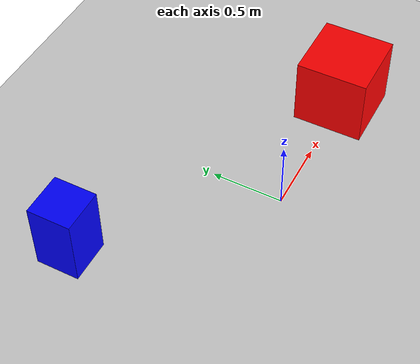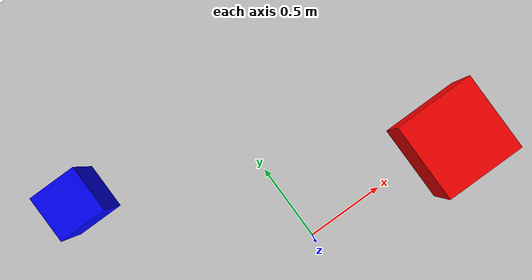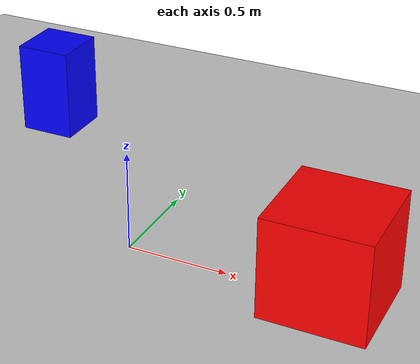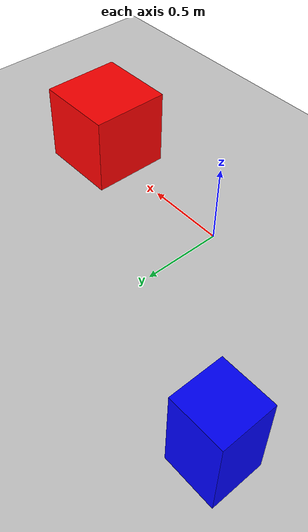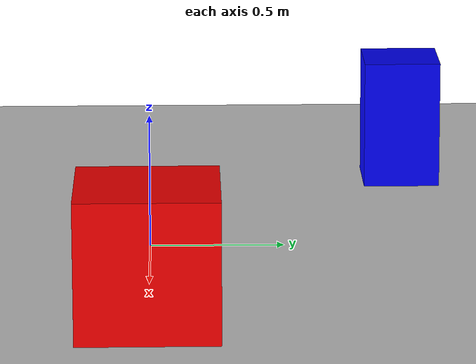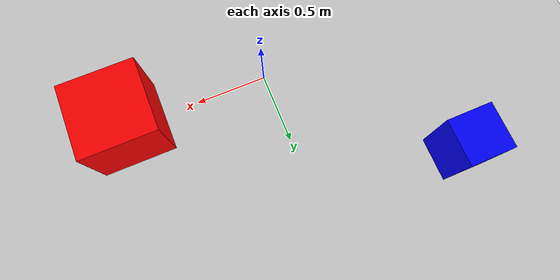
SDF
<?xml version="1.0" ?>
<sdf version="1.6">
  <world name="default">
    <include>
      <uri>model://ground_plane</uri>
    </include>
    <include>
      <uri>model://sun</uri>
    </include>
    <!-- Obstacle 1 -->
    <model name="box_obstacle1">
      <static>true</static>
      <link name="link">
        <pose>1 0 0.25 0 0 0</pose>
        <collision name="collision">
          <geometry>
            <box>
              <size>0.5 0.5 0.5</size>
            </box>
          </geometry>
        </collision>
        <visual name="visual">
          <geometry>
            <box>
              <size>0.5 0.5 0.5</size>
            </box>
          </geometry>
          <material>
            <ambient>1 0 0 1</ambient>
          </material>
        </visual>
      </link>
    </model>
    <!-- Obstacle 2 -->
    <model name="box_obstacle2">
      <static>true</static>
      <link name="link">
        <pose>-1 1 0.25 0 0 0</pose>
        <collision name="collision">
          <geometry>
            <box>
              <size>0.3 0.3 0.5</size>
            </box>
          </geometry>
        </collision>
        <visual name="visual">
          <geometry>
            <box>
              <size>0.3 0.3 0.5</size>
            </box>
          </geometry>
          <material>
            <ambient>0 0 1 1</ambient>
          </material>
        </visual>
      </link>
    </model>
  </world>
</sdf>
